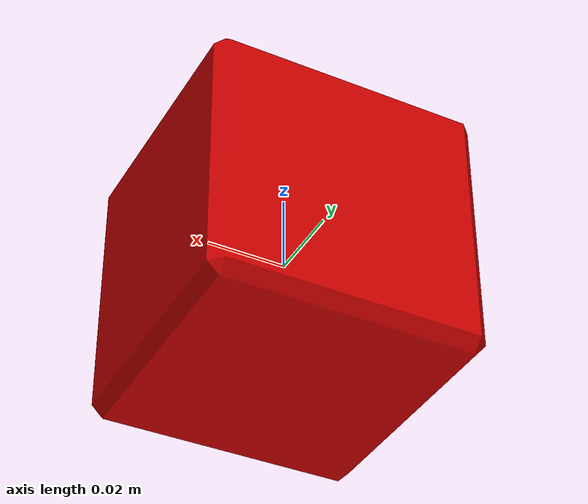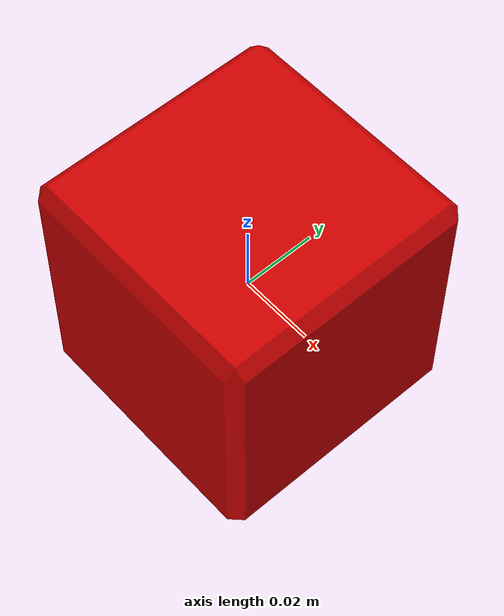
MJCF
<mujoco model="loaded_dice_density">
  <compiler angle="radian" inertiagrouprange="2 2"/>
  <default>
    <default class="visual">
      <geom group="2" type="mesh" contype="0" conaffinity="0"/>
    </default>
    <default class="collision">
      <geom group="3" type="mesh"/>
    </default>
  </default>
  <asset>
    <material name="203,154,59" specular="0.543791" shininess="1.0" rgba="0.796078 0.603922 0.231373 1.000000"/>
    <material name="204,0,0" specular="1.0" shininess="1.0" rgba="0.800000 0.000000 0.000000 1.000000"/>
    <mesh file="loaded_dice_0.obj" scale="0.001 0.001 0.001" inertia="exact"/>
    <mesh file="loaded_dice_1.obj" scale="0.001 0.001 0.001" inertia="exact"/>
    <mesh file="loaded_dice_collision_0.obj" scale="0.001 0.001 0.001" inertia="exact"/>
  </asset>
  <worldbody>
    <body name="loaded_dice">
      <freejoint name="loaded_dice_free"/>
      <geom name="loaded_dice_case" mesh="loaded_dice_0" material="204,0,0" density="1060" class="visual"/>
      <geom name="loaded_dice_brass" mesh="loaded_dice_1" material="203,154,59" density="8470" class="visual"/>
      <geom name="loaded_dice_collision" mesh="loaded_dice_collision_0" rgba="0.4086027063060057 0.4204582121954845 0.7997155407939681 1" class="collision"/>
    </body>
  </worldbody>
</mujoco>
